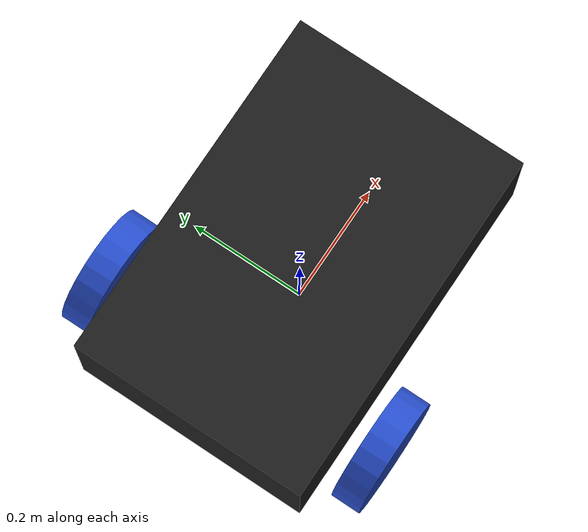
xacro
<?xml version="1.0"?>

<robot xmlns:xacro="http://www.ros.org/wiki/xacro">

    <xacro:property name="base_length" value="0.6" />
    <xacro:property name="base_width" value="0.4" />
    <xacro:property name="base_height" value="0.2" />
    <xacro:property name="wheel_radius" value="0.1" />
    <xacro:property name="wheel_length" value="0.05" />

    <xacro:macro name="wheel_link" params="prefix">
        <link name="${prefix}_wheel_link">
            <visual>
                <geometry>
                    <cylinder length="${wheel_length}" radius="${wheel_radius}" />
                </geometry>
                <origin xyz="0 0 0" rpy="${pi / 2.0} 0 0" />
                <material name="blue" />
            </visual>

            <collision>
                <geometry>
                    <sphere radius="${wheel_radius}" />
                </geometry>
                <origin xyz="0.0 0.0 0.0" rpy="0.0 0.0 0.0"/>
            </collision>

            <xacro:sphere_inertial mass="1.0" r="${wheel_radius}" o_xyz="0 0 0" o_rpy="${pi / 2.0} 0 0"/>
        </link>
    </xacro:macro>

    <!--                  LINKS                  -->

    <link name="base_footprint"/>

    <link name="base_link">
        <visual>
            <geometry>
                <box size="${base_length} ${base_width} ${base_height}" />
            </geometry>
            <origin xyz="0 0 0" rpy="0 0 0" />
            <material name="black" />
        </visual>

        <xacro:box_inertial mass="5.0" l="${base_length}" w="${base_width}" h="${base_height}" o_xyz="0 0 0" o_rpy="0 0 0"/>

        <collision>
            <geometry>
                <box size="${base_length} ${base_width} ${base_height}" />
            </geometry>
            <origin xyz="0.0 0.0 0.0" rpy="0.0 0.0 0.0"/>
        </collision>

    </link>

    <xacro:wheel_link prefix="right" />
    <xacro:wheel_link prefix="left" />

    <link name="caster_wheel">
        <visual>
            <geometry>
                <sphere radius="${wheel_radius/2}" />
            </geometry>
            <material name="green" />
        </visual>

        <xacro:sphere_inertial mass="1.0" r="${wheel_radius/2}" o_xyz="0 0 0" o_rpy="0 0 0" />

        <collision>
            <origin xyz="0.0 0.0 0.0" rpy="0.0 0.0 0.0"/>
            <geometry>
                <sphere radius="${wheel_radius/2}" />
            </geometry>
        </collision>

    </link>

    <!--                  JOINTS                  -->

    <joint name="base_footprint_base_link" type="fixed">
        <parent link="base_footprint" />
        <child link="base_link" />
        <origin xyz="0 0 ${base_height/2 + wheel_radius}" rpy="0 0 0" />
    </joint>

    <joint name="base_link_right_wheel" type="continuous">
        <parent link="base_link" />
        <child link="right_wheel_link" />
        <origin xyz="${-base_length/4} ${-(base_width/2 + wheel_length)} ${-base_height/2}" rpy="0 0 0" />
        <axis xyz="0 1 0" />
    </joint>

    <joint name="base_link_left_wheel" type="continuous">
        <parent link="base_link" />
        <child link="left_wheel_link" />
        <origin xyz="${-base_length/4} ${(base_width/2 + wheel_length)} ${-base_height/2}" rpy="0 0 0" />
        <axis xyz="0 1 0" />
    </joint>

    <joint name="base_link_caster_wheel" type="fixed">
        <parent link="base_link" />
        <child link="caster_wheel" />
        <origin xyz="${base_length/3.0} 0 ${-(base_height/2 + wheel_radius/2)}" rpy="0 0 0" />
    </joint>

</robot>
